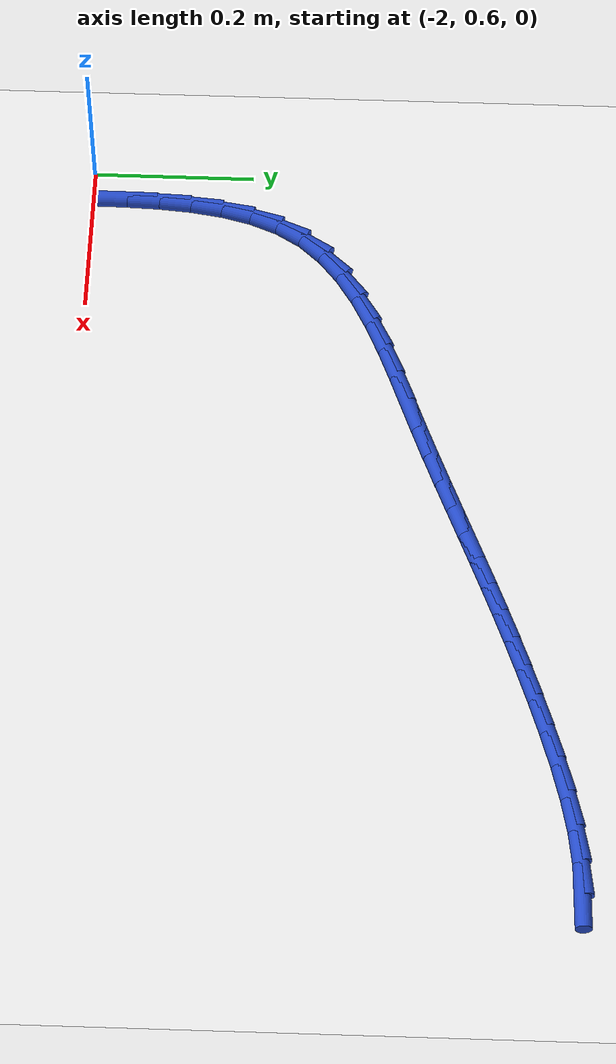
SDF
<sdf version="1.6">
 <world name="default">
  <model name="ground_plane">
   <static>1</static>
   <link name="link">
    <collision name="collision">
     <geometry><plane><normal>0 0 1</normal><size>100 100</size></plane></geometry>
     <surface><friction><ode><mu>100</mu><mu2>50</mu2></ode></friction></surface>
    </collision>
    <visual name="visual">
     <cast_shadows>0</cast_shadows>
     <geometry><plane><normal>0 0 1</normal><size>100 100</size></plane></geometry>
     <material>
      <script><uri>file://media/materials/scripts/gazebo.material</uri><name>Gazebo/WhiteGlow</name></script>
     </material>
    </visual>
   </link>
  </model>
  <model name="line">
   <link name="link_43">
    <pose>-1.0062529293540954 1.2144297673564552 0.01 0 1.57 0.03433789562780403</pose>
    <collision name="collision">
     <geometry><cylinder><radius>0.01</radius><length>0.08</length></cylinder></geometry>
    </collision>
    <visual name="visual">
     <material>
      <script><name>Gazebo/Blue</name><uri>file://media/materials/scripts/gazebo.material</uri></script>
     </material>
     <geometry><cylinder><radius>0.01</radius><length>0.08</length></cylinder></geometry>
    </visual>
   </link>
   <link name="link_44">
    <pose>-1.0463208702193758 1.2130533775795067 0.01 0 1.57 0.1349398559998989</pose>
    <collision name="collision">
     <geometry><cylinder><radius>0.01</radius><length>0.08</length></cylinder></geometry>
    </collision>
    <visual name="visual">
     <material>
      <script><name>Gazebo/Blue</name><uri>file://media/materials/scripts/gazebo.material</uri></script>
     </material>
     <geometry><cylinder><radius>0.01</radius><length>0.08</length></cylinder></geometry>
    </visual>
   </link>
   <link name="link_45">
    <pose>-1.0882372342835709 1.2073626068109464 0.01 0 1.57 0.2080720398100845</pose>
    <collision name="collision">
     <geometry><cylinder><radius>0.01</radius><length>0.08</length></cylinder></geometry>
    </collision>
    <visual name="visual">
     <material>
      <script><name>Gazebo/Blue</name><uri>file://media/materials/scripts/gazebo.material</uri></script>
     </material>
     <geometry><cylinder><radius>0.01</radius><length>0.08</length></cylinder></geometry>
    </visual>
   </link>
   <link name="link_46">
    <pose>-1.131161480605971 1.1983001084255478 0.01 0 1.57 0.26061284737794516</pose>
    <collision name="collision">
     <geometry><cylinder><radius>0.01</radius><length>0.08</length></cylinder></geometry>
    </collision>
    <visual name="visual">
     <material>
      <script><name>Gazebo/Blue</name><uri>file://media/materials/scripts/gazebo.material</uri></script>
     </material>
     <geometry><cylinder><radius>0.01</radius><length>0.08</length></cylinder></geometry>
    </visual>
   </link>
   <link name="link_47">
    <pose>-1.174253068245865 1.1868085357980833 0.01 0 1.57 0.2969084215899622</pose>
    <collision name="collision">
     <geometry><cylinder><radius>0.01</radius><length>0.08</length></cylinder></geometry>
    </collision>
    <visual name="visual">
     <material>
      <script><name>Gazebo/Blue</name><uri>file://media/materials/scripts/gazebo.material</uri></script>
     </material>
     <geometry><cylinder><radius>0.01</radius><length>0.08</length></cylinder></geometry>
    </visual>
   </link>
   <link name="link_48">
    <pose>-1.2166714562625425 1.1738305423033266 0.01 0 1.57 0.3197451185368244</pose>
    <collision name="collision">
     <geometry><cylinder><radius>0.01</radius><length>0.08</length></cylinder></geometry>
    </collision>
    <visual name="visual">
     <material>
      <script><name>Gazebo/Blue</name><uri>file://media/materials/scripts/gazebo.material</uri></script>
     </material>
     <geometry><cylinder><radius>0.01</radius><length>0.08</length></cylinder></geometry>
    </visual>
   </link>
   <link name="link_49">
    <pose>-1.2576208942513718 1.1602719148865517 0.01 0 1.57 0.3363572651538081</pose>
    <collision name="collision">
     <geometry><cylinder><radius>0.01</radius><length>0.08</length></cylinder></geometry>
    </collision>
    <visual name="visual">
     <material>
      <script><name>Gazebo/Blue</name><uri>file://media/materials/scripts/gazebo.material</uri></script>
     </material>
     <geometry><cylinder><radius>0.01</radius><length>0.08</length></cylinder></geometry>
    </visual>
   </link>
   <link name="link_50">
    <pose>-1.2969232283403034 1.1465301058978143 0.01 0 1.57 0.35124207204506946</pose>
    <collision name="collision">
     <geometry><cylinder><radius>0.01</radius><length>0.08</length></cylinder></geometry>
    </collision>
    <visual name="visual">
     <material>
      <script><name>Gazebo/Blue</name><uri>file://media/materials/scripts/gazebo.material</uri></script>
     </material>
     <geometry><cylinder><radius>0.01</radius><length>0.08</length></cylinder></geometry>
    </visual>
   </link>
   <link name="link_51">
    <pose>-1.3348501872318437 1.1326322759766982 0.01 0 1.57 0.36405639515233956</pose>
    <collision name="collision">
     <geometry><cylinder><radius>0.01</radius><length>0.08</length></cylinder></geometry>
    </collision>
    <visual name="visual">
     <material>
      <script><name>Gazebo/Blue</name><uri>file://media/materials/scripts/gazebo.material</uri></script>
     </material>
     <geometry><cylinder><radius>0.01</radius><length>0.08</length></cylinder></geometry>
    </visual>
   </link>
   <link name="link_52">
    <pose>-1.3716836881841719 1.1185971997129116 0.01 0 1.57 0.3743832435007732</pose>
    <collision name="collision">
     <geometry><cylinder><radius>0.01</radius><length>0.08</length></cylinder></geometry>
    </collision>
    <visual name="visual">
     <material>
      <script><name>Gazebo/Blue</name><uri>file://media/materials/scripts/gazebo.material</uri></script>
     </material>
     <geometry><cylinder><radius>0.01</radius><length>0.08</length></cylinder></geometry>
    </visual>
   </link>
   <link name="link_53">
    <pose>-1.407705648455466 1.104443651696164 0.01 0 1.57 0.38187334571462195</pose>
    <collision name="collision">
     <geometry><cylinder><radius>0.01</radius><length>0.08</length></cylinder></geometry>
    </collision>
    <visual name="visual">
     <material>
      <script><name>Gazebo/Blue</name><uri>file://media/materials/scripts/gazebo.material</uri></script>
     </material>
     <geometry><cylinder><radius>0.01</radius><length>0.08</length></cylinder></geometry>
    </visual>
   </link>
   <link name="link_54">
    <pose>-1.4431979853039065 1.0901904065161647 0.01 0 1.57 0.3862731579008805</pose>
    <collision name="collision">
     <geometry><cylinder><radius>0.01</radius><length>0.08</length></cylinder></geometry>
    </collision>
    <visual name="visual">
     <material>
      <script><name>Gazebo/Blue</name><uri>file://media/materials/scripts/gazebo.material</uri></script>
     </material>
     <geometry><cylinder><radius>0.01</radius><length>0.08</length></cylinder></geometry>
    </visual>
   </link>
   <link name="link_55">
    <pose>-1.478442615987672 1.075856238762622 0.01 0 1.57 0.38744577085603676</pose>
    <collision name="collision">
     <geometry><cylinder><radius>0.01</radius><length>0.08</length></cylinder></geometry>
    </collision>
    <visual name="visual">
     <material>
      <script><name>Gazebo/Blue</name><uri>file://media/materials/scripts/gazebo.material</uri></script>
     </material>
     <geometry><cylinder><radius>0.01</radius><length>0.08</length></cylinder></geometry>
    </visual>
   </link>
   <link name="link_56">
    <pose>-1.513721457764942 1.0614599230252466 0.01 0 1.57 0.38538177856943073</pose>
    <collision name="collision">
     <geometry><cylinder><radius>0.01</radius><length>0.08</length></cylinder></geometry>
    </collision>
    <visual name="visual">
     <material>
      <script><name>Gazebo/Blue</name><uri>file://media/materials/scripts/gazebo.material</uri></script>
     </material>
     <geometry><cylinder><radius>0.01</radius><length>0.08</length></cylinder></geometry>
    </visual>
   </link>
   <link name="link_57">
    <pose>-1.5493164278938945 1.0470202338937458 0.01 0 1.57 0.38019864129182435</pose>
    <collision name="collision">
     <geometry><cylinder><radius>0.01</radius><length>0.08</length></cylinder></geometry>
    </collision>
    <visual name="visual">
     <material>
      <script><name>Gazebo/Blue</name><uri>file://media/materials/scripts/gazebo.material</uri></script>
     </material>
     <geometry><cylinder><radius>0.01</radius><length>0.08</length></cylinder></geometry>
    </visual>
   </link>
   <link name="link_58">
    <pose>-1.585509443632711 1.0325559459578297 0.01 0 1.57 0.3721288148763471</pose>
    <collision name="collision">
     <geometry><cylinder><radius>0.01</radius><length>0.08</length></cylinder></geometry>
    </collision>
    <visual name="visual">
     <material>
      <script><name>Gazebo/Blue</name><uri>file://media/materials/scripts/gazebo.material</uri></script>
     </material>
     <geometry><cylinder><radius>0.01</radius><length>0.08</length></cylinder></geometry>
    </visual>
   </link>
   <link name="link_59">
    <pose>-1.6225824222395688 1.0180858338072074 0.01 0 1.57 0.3618359479437328</pose>
    <collision name="collision">
     <geometry><cylinder><radius>0.01</radius><length>0.08</length></cylinder></geometry>
    </collision>
    <visual name="visual">
     <material>
      <script><name>Gazebo/Blue</name><uri>file://media/materials/scripts/gazebo.material</uri></script>
     </material>
     <geometry><cylinder><radius>0.01</radius><length>0.08</length></cylinder></geometry>
    </visual>
   </link>
   <link name="link_60">
    <pose>-1.6607994734513074 1.0036206659014333 0.01 0 1.57 0.359592009753183</pose>
    <collision name="collision">
     <geometry><cylinder><radius>0.01</radius><length>0.08</length></cylinder></geometry>
    </collision>
    <visual name="visual">
     <material>
      <script><name>Gazebo/Blue</name><uri>file://media/materials/scripts/gazebo.material</uri></script>
     </material>
     <geometry><cylinder><radius>0.01</radius><length>0.08</length></cylinder></geometry>
    </visual>
   </link>
   <link name="link_61">
    <pose>-1.6998830652946877 0.9889276925851633 0.01 0 1.57 0.37646532392815757</pose>
    <collision name="collision">
     <geometry><cylinder><radius>0.01</radius><length>0.08</length></cylinder></geometry>
    </collision>
    <visual name="visual">
     <material>
      <script><name>Gazebo/Blue</name><uri>file://media/materials/scripts/gazebo.material</uri></script>
     </material>
     <geometry><cylinder><radius>0.01</radius><length>0.08</length></cylinder></geometry>
    </visual>
   </link>
   <link name="link_62">
    <pose>-1.7389285703696726 0.9734922267278643 0.01 0 1.57 0.41359460355745054</pose>
    <collision name="collision">
     <geometry><cylinder><radius>0.01</radius><length>0.08</length></cylinder></geometry>
    </collision>
    <visual name="visual">
     <material>
      <script><name>Gazebo/Blue</name><uri>file://media/materials/scripts/gazebo.material</uri></script>
     </material>
     <geometry><cylinder><radius>0.01</radius><length>0.08</length></cylinder></geometry>
    </visual>
   </link>
   <link name="link_63">
    <pose>-1.7769963479530984 0.9567838394673649 0.01 0 1.57 0.4732612441849225</pose>
    <collision name="collision">
     <geometry><cylinder><radius>0.01</radius><length>0.08</length></cylinder></geometry>
    </collision>
    <visual name="visual">
     <material>
      <script><name>Gazebo/Blue</name><uri>file://media/materials/scripts/gazebo.material</uri></script>
     </material>
     <geometry><cylinder><radius>0.01</radius><length>0.08</length></cylinder></geometry>
    </visual>
   </link>
   <link name="link_64">
    <pose>-1.8131467573218012 0.9382721019414945 0.01 0 1.57 0.5594011265303918</pose>
    <collision name="collision">
     <geometry><cylinder><radius>0.01</radius><length>0.08</length></cylinder></geometry>
    </collision>
    <visual name="visual">
     <material>
      <script><name>Gazebo/Blue</name><uri>file://media/materials/scripts/gazebo.material</uri></script>
     </material>
     <geometry><cylinder><radius>0.01</radius><length>0.08</length></cylinder></geometry>
    </visual>
   </link>
   <link name="link_65">
    <pose>-1.8464401577526177 0.9174265852880817 0.01 0 1.57 0.6770585923704274</pose>
    <collision name="collision">
     <geometry><cylinder><radius>0.01</radius><length>0.08</length></cylinder></geometry>
    </collision>
    <visual name="visual">
     <material>
      <script><name>Gazebo/Blue</name><uri>file://media/materials/scripts/gazebo.material</uri></script>
     </material>
     <geometry><cylinder><radius>0.01</radius><length>0.08</length></cylinder></geometry>
    </visual>
   </link>
   <link name="link_66">
    <pose>-1.8759369085223856 0.893716860644956 0.01 0 1.57 0.8305599373830256</pose>
    <collision name="collision">
     <geometry><cylinder><radius>0.01</radius><length>0.08</length></cylinder></geometry>
    </collision>
    <visual name="visual">
     <material>
      <script><name>Gazebo/Blue</name><uri>file://media/materials/scripts/gazebo.material</uri></script>
     </material>
     <geometry><cylinder><radius>0.01</radius><length>0.08</length></cylinder></geometry>
    </visual>
   </link>
   <link name="link_67">
    <pose>-1.9006973689079416 0.8666124991499468 0.01 0 1.57 1.0129136267222016</pose>
    <collision name="collision">
     <geometry><cylinder><radius>0.01</radius><length>0.08</length></cylinder></geometry>
    </collision>
    <visual name="visual">
     <material>
      <script><name>Gazebo/Blue</name><uri>file://media/materials/scripts/gazebo.material</uri></script>
     </material>
     <geometry><cylinder><radius>0.01</radius><length>0.08</length></cylinder></geometry>
    </visual>
   </link>
   <link name="link_68">
    <pose>-1.9199788175189478 0.8357129350241627 0.01 0 1.57 1.1790960409352982</pose>
    <collision name="collision">
     <geometry><cylinder><radius>0.01</radius><length>0.08</length></cylinder></geometry>
    </collision>
    <visual name="visual">
     <material>
      <script><name>Gazebo/Blue</name><uri>file://media/materials/scripts/gazebo.material</uri></script>
     </material>
     <geometry><cylinder><radius>0.01</radius><length>0.08</length></cylinder></geometry>
    </visual>
   </link>
   <link name="link_69">
    <pose>-1.934167271256702 0.8013619754898986 0.01 0 1.57 1.311083215576916</pose>
    <collision name="collision">
     <geometry><cylinder><radius>0.01</radius><length>0.08</length></cylinder></geometry>
    </collision>
    <visual name="visual">
     <material>
      <script><name>Gazebo/Blue</name><uri>file://media/materials/scripts/gazebo.material</uri></script>
     </material>
     <geometry><cylinder><radius>0.01</radius><length>0.08</length></cylinder></geometry>
    </visual>
   </link>
   <link name="link_70">
    <pose>-1.9440501987840721 0.7641681745710868 0.01 0 1.57 1.4107339719890426</pose>
    <collision name="collision">
     <geometry><cylinder><radius>0.01</radius><length>0.08</length></cylinder></geometry>
    </collision>
    <visual name="visual">
     <material>
      <script><name>Gazebo/Blue</name><uri>file://media/materials/scripts/gazebo.material</uri></script>
     </material>
     <geometry><cylinder><radius>0.01</radius><length>0.08</length></cylinder></geometry>
    </visual>
   </link>
   <link name="link_71">
    <pose>-1.950415553395354 0.7247404058932442 0.01 0 1.57 1.4824645061787423</pose>
    <collision name="collision">
     <geometry><cylinder><radius>0.01</radius><length>0.08</length></cylinder></geometry>
    </collision>
    <visual name="visual">
     <material>
      <script><name>Gazebo/Blue</name><uri>file://media/materials/scripts/gazebo.material</uri></script>
     </material>
     <geometry><cylinder><radius>0.01</radius><length>0.08</length></cylinder></geometry>
    </visual>
   </link>
   <link name="link_72">
    <pose>-1.95405128838484 0.6836875430818881 0.01 0 1.57 1.5305493393597656</pose>
    <collision name="collision">
     <geometry><cylinder><radius>0.01</radius><length>0.08</length></cylinder></geometry>
    </collision>
    <visual name="visual">
     <material>
      <script><name>Gazebo/Blue</name><uri>file://media/materials/scripts/gazebo.material</uri></script>
     </material>
     <geometry><cylinder><radius>0.01</radius><length>0.08</length></cylinder></geometry>
    </visual>
   </link>
   <link name="link_73">
    <pose>-1.9557453570468248 0.6416184597625352 0.01 0 1.57 1.5580757078500562</pose>
    <collision name="collision">
     <geometry><cylinder><radius>0.01</radius><length>0.08</length></cylinder></geometry>
    </collision>
    <visual name="visual">
     <material>
      <script><name>Gazebo/Blue</name><uri>file://media/materials/scripts/gazebo.material</uri></script>
     </material>
     <geometry><cylinder><radius>0.01</radius><length>0.08</length></cylinder></geometry>
    </visual>
   </link>
  </model>
 </world>
</sdf>
